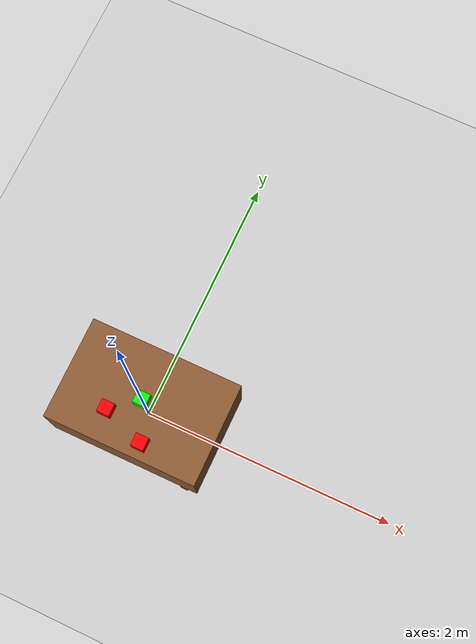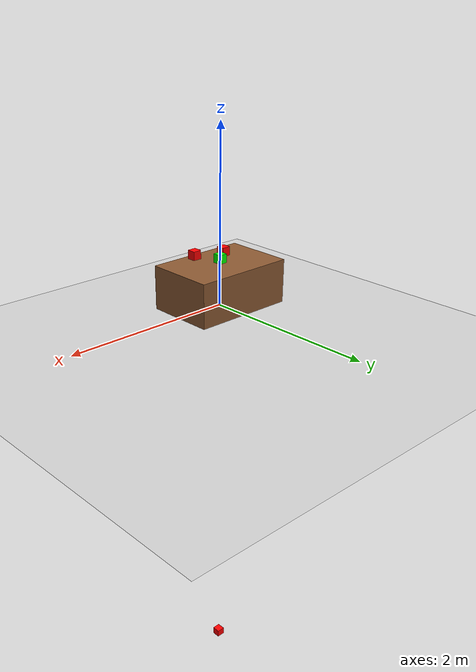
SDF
<?xml version='1.0' encoding='utf-8'?>
<sdf version="1.9">
  <world name="manipulation_world">

    <physics name="1ms" type="ignored">
      <max_step_size>0.001</max_step_size>
      <real_time_factor>1.0</real_time_factor>
    </physics>

    <plugin filename="gz-sim-physics-system" name="gz::sim::systems::Physics" />
    <plugin filename="gz-sim-sensors-system" name="gz::sim::systems::Sensors">
      <render_engine>ogre2</render_engine>
    </plugin>
    <plugin filename="gz-sim-scene-broadcaster-system" name="gz::sim::systems::SceneBroadcaster" />
    <plugin filename="gz-sim-user-commands-system" name="gz::sim::systems::UserCommands" />

    <light type="directional" name="sun">
      <cast_shadows>true</cast_shadows>
      <pose>0 0 10 0 0 0</pose>
      <diffuse>0.8 0.8 0.8 1</diffuse>
      <specular>0.2 0.2 0.2 1</specular>
      <attenuation>
        <range>1000</range>
        <constant>0.9</constant>
        <linear>0.01</linear>
        <quadratic>0.001</quadratic>
      </attenuation>
      <direction>-0.5 0.1 -0.9</direction>
    </light>

    <model name="ground_plane">
      <static>true</static>
      <link name="link">
        <collision name="collision">
          <geometry><plane><normal>0 0 1</normal><size>100 100</size></plane></geometry>
        </collision>
        <visual name="visual">
          <geometry><plane><normal>0 0 1</normal><size>100 100</size></plane></geometry>
          <material>
            <ambient>0.8 0.8 0.8 1</ambient>
            <diffuse>0.8 0.8 0.8 1</diffuse>
          </material>
        </visual>
      </link>
    </model>

    <model name="table">
      <static>true</static>
      <pose>0 0 0.25 0 0 0</pose>
      <link name="link">
        <collision name="collision">
          <geometry><box><size>1.2 0.8 0.5</size></box></geometry>
        </collision>
        <visual name="visual">
          <geometry><box><size>1.2 0.8 0.5</size></box></geometry>
          <material>
            <ambient>0.55 0.35 0.2 1</ambient>
            <diffuse>0.55 0.35 0.2 1</diffuse>
          </material>
        </visual>
      </link>
    </model>

    <model name="target_cube">
      <pose>0 0 0.55 0 0 0</pose>
      <link name="link">
        <inertial><mass>0.2</mass><inertia><ixx>0.001</ixx><iyy>0.001</iyy><izz>0.001</izz></inertia></inertial>
        <collision name="collision"><geometry><box><size>0.1 0.1 0.1</size></box></geometry></collision>
        <visual name="visual">
          <geometry><box><size>0.1 0.1 0.1</size></box></geometry>
          <material>
            <ambient>0 1 0 1</ambient>
            <diffuse>0 1 0 1</diffuse>
          </material>
        </visual>
      </link>
    </model>

    <model name="distractor_cube_1">
      <pose>0.12548411861209535 -0.2849935468663998 0.55 0.0 0.0 0.0</pose>
      <link name="link">
        <inertial><mass>0.2</mass><inertia><ixx>0.001</ixx><iyy>0.001</iyy><izz>0.001</izz></inertia></inertial>
        <collision name="collision"><geometry><box><size>0.1 0.1 0.1</size></box></geometry></collision>
        <visual name="visual">
          <geometry><box><size>0.1 0.1 0.1</size></box></geometry>
          <material><ambient>1 0 0 1</ambient><diffuse>1 0 0 1</diffuse></material>
        </visual>
      </link>
    </model>

    <model name="distractor_cube_2">
      <pose>-0.20247361346779266 -0.16607355711070634 0.55 0.0 0.0 0.0</pose>
      <link name="link">
        <inertial><mass>0.2</mass><inertia><ixx>0.001</ixx><iyy>0.001</iyy><izz>0.001</izz></inertia></inertial>
        <collision name="collision"><geometry><box><size>0.1 0.1 0.1</size></box></geometry></collision>
        <visual name="visual">
          <geometry><box><size>0.1 0.1 0.1</size></box></geometry>
          <material><ambient>1 0 0 1</ambient><diffuse>1 0 0 1</diffuse></material>
        </visual>
      </link>
    </model>

    <model name="distractor_cube_3">
      <pose>0.0 0.0 -5.0 0.0 0.0 0.0</pose>
      <link name="link">
        <inertial><mass>0.2</mass><inertia><ixx>0.001</ixx><iyy>0.001</iyy><izz>0.001</izz></inertia></inertial>
        <collision name="collision"><geometry><box><size>0.1 0.1 0.1</size></box></geometry></collision>
        <visual name="visual">
          <geometry><box><size>0.1 0.1 0.1</size></box></geometry>
          <material><ambient>1 0 0 1</ambient><diffuse>1 0 0 1</diffuse></material>
        </visual>
      </link>
    </model>

    <model name="distractor_cube_4">
      <pose>0.0 0.0 -5.0 0.0 0.0 0.0</pose>
      <link name="link">
        <inertial><mass>0.2</mass><inertia><ixx>0.001</ixx><iyy>0.001</iyy><izz>0.001</izz></inertia></inertial>
        <collision name="collision"><geometry><box><size>0.1 0.1 0.1</size></box></geometry></collision>
        <visual name="visual">
          <geometry><box><size>0.1 0.1 0.1</size></box></geometry>
          <material><ambient>1 0 0 1</ambient><diffuse>1 0 0 1</diffuse></material>
        </visual>
      </link>
    </model>

    <model name="camera_model">
      <pose>0.0 -1.2 1.0 0.0 0.3 1.5708</pose>
      <static>true</static>
      <link name="link">
        <pose>0 0 0 0 0 0</pose>

        <sensor name="rgb_camera" type="camera">
          <camera>
            <horizontal_fov>1.047</horizontal_fov>
            <image><width>640</width><height>480</height><format>R8G8B8</format></image>
            <clip><near>0.05</near><far>10</far></clip>
          </camera>
          <always_on>1</always_on>
          <update_rate>30</update_rate>
          <visualize>true</visualize>
          <topic>camera/image</topic>
        </sensor>

        <sensor name="rgbd_camera" type="rgbd_camera">
          <camera>
            <horizontal_fov>1.047</horizontal_fov>
            <image><width>640</width><height>480</height><format>R8G8B8</format></image>
            <clip><near>0.05</near><far>10</far></clip>
          </camera>
          <always_on>1</always_on>
          <update_rate>30</update_rate>
          <visualize>false</visualize>
          <topic>camera/rgbd</topic>
        </sensor>

      </link>
    </model>

  </world>
</sdf>
